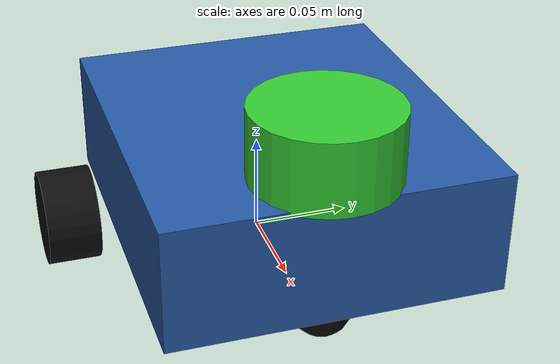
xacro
<?xml version="1.0"?>
<robot xmlns:xacro="http://www.ros.org/wiki/xacro" name="mini_robot">
  <xacro:property name="base_length" value="0.18"/>
  <xacro:property name="base_width" value="0.16"/>
  <xacro:property name="base_height" value="0.06"/>
  <xacro:property name="wheel_radius" value="0.0235"/>
  <xacro:property name="wheel_width" value="0.026"/>
  <!-- Left-to-right wheel contact patch distance: TRACK_WIDTH_MM / 1000. -->
  <xacro:property name="track" value="0.20"/>
  <xacro:property name="axle_x" value="0.0"/>
  <!-- Passive trolley caster, on the centreline, 100 mm ahead of the drive
       axle: it is the leading end, under the LiDAR. -->
  <xacro:property name="caster_x" value="0.10"/>
  <xacro:property name="caster_radius" value="0.015"/>
  <!-- COIN-D6 sits directly above the caster, 100 mm above the ground. -->
  <xacro:property name="laser_height" value="0.10"/>
  <!-- Body box is nominal/visual only; offset forward so it spans axle to caster. -->
  <xacro:property name="body_x" value="0.035"/>

  <material name="body"><color rgba="0.15 0.35 0.65 1"/></material>
  <material name="wheel"><color rgba="0.05 0.05 0.05 1"/></material>
  <material name="sensor"><color rgba="0.2 0.8 0.2 1"/></material>

  <!-- base_footprint is the ground-projected frame Nav2, AMCL and SLAM use. -->
  <link name="base_footprint"/>
  <joint name="base_footprint_joint" type="fixed">
    <parent link="base_footprint"/><child link="base_link"/>
    <origin xyz="0 0 ${wheel_radius}" rpy="0 0 0"/>
  </joint>

  <link name="base_link">
    <visual><origin xyz="${body_x} 0 ${base_height/2}"/><geometry><box size="${base_length} ${base_width} ${base_height}"/></geometry><material name="body"/></visual>
    <collision><origin xyz="${body_x} 0 ${base_height/2}"/><geometry><box size="${base_length} ${base_width} ${base_height}"/></geometry></collision>
    <inertial><origin xyz="${body_x} 0 ${base_height/2}"/><mass value="2.0"/><inertia ixx="0.008" ixy="0" ixz="0" iyy="0.008" iyz="0" izz="0.012"/></inertial>
  </link>

  <xacro:macro name="wheel" params="name y">
    <link name="${name}_wheel_link">
      <visual><origin rpy="1.5708 0 0"/><geometry><cylinder radius="${wheel_radius}" length="${wheel_width}"/></geometry><material name="wheel"/></visual>
      <collision><origin rpy="1.5708 0 0"/><geometry><cylinder radius="${wheel_radius}" length="${wheel_width}"/></geometry></collision>
      <inertial><mass value="0.12"/><inertia ixx="0.00012" ixy="0" ixz="0" iyy="0.00012" iyz="0" izz="0.0002"/></inertial>
    </link>
    <joint name="${name}_wheel_joint" type="continuous">
      <parent link="base_link"/><child link="${name}_wheel_link"/>
      <origin xyz="${axle_x} ${y} 0" rpy="0 0 0"/><axis xyz="0 1 0"/>
    </joint>
  </xacro:macro>

  <xacro:wheel name="left" y="${track/2}"/>
  <xacro:wheel name="right" y="${-track/2}"/>

  <!-- Passive caster: fixed joint because nothing publishes a state for it,
       and its swivel does not affect any transform the stack consumes. -->
  <link name="caster_link">
    <visual><geometry><sphere radius="${caster_radius}"/></geometry><material name="wheel"/></visual>
    <collision><geometry><sphere radius="${caster_radius}"/></geometry></collision>
    <inertial><mass value="0.02"/><inertia ixx="0.000002" ixy="0" ixz="0" iyy="0.000002" iyz="0" izz="0.000002"/></inertial>
  </link>
  <joint name="caster_joint" type="fixed">
    <parent link="base_link"/><child link="caster_link"/>
    <origin xyz="${caster_x} 0 ${caster_radius - wheel_radius}" rpy="0 0 0"/>
  </joint>

  <link name="laser">
    <visual><geometry><cylinder radius="0.035" length="0.035"/></geometry><material name="sensor"/></visual>
  </link>
  <joint name="laser_joint" type="fixed"><parent link="base_link"/><child link="laser"/><origin xyz="${caster_x} 0 ${laser_height - wheel_radius}" rpy="0 0 0"/></joint>

  <link name="imu_link"/>
  <joint name="imu_joint" type="fixed"><parent link="base_link"/><child link="imu_link"/><origin xyz="0 0 ${base_height}" rpy="0 0 ${pi}"/></joint>
</robot>
